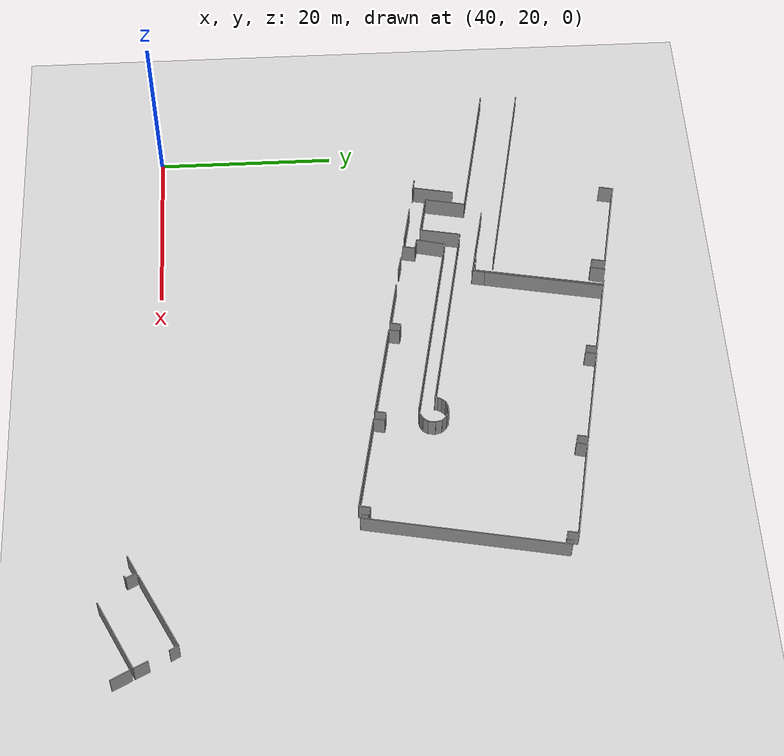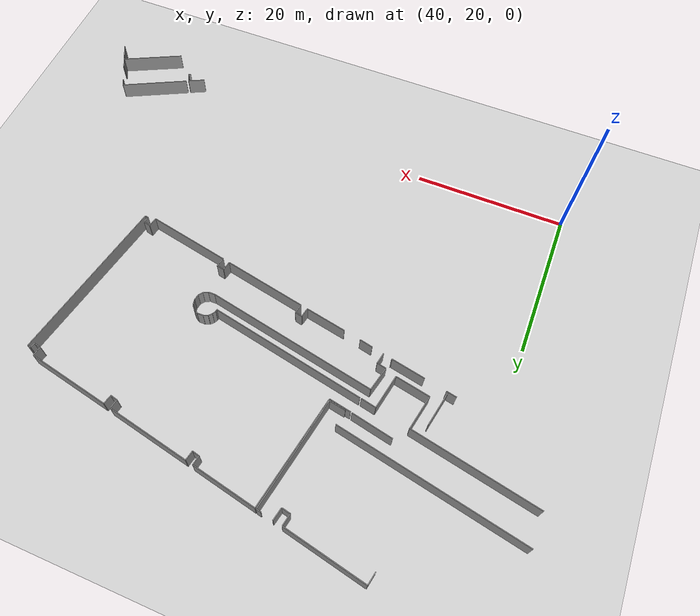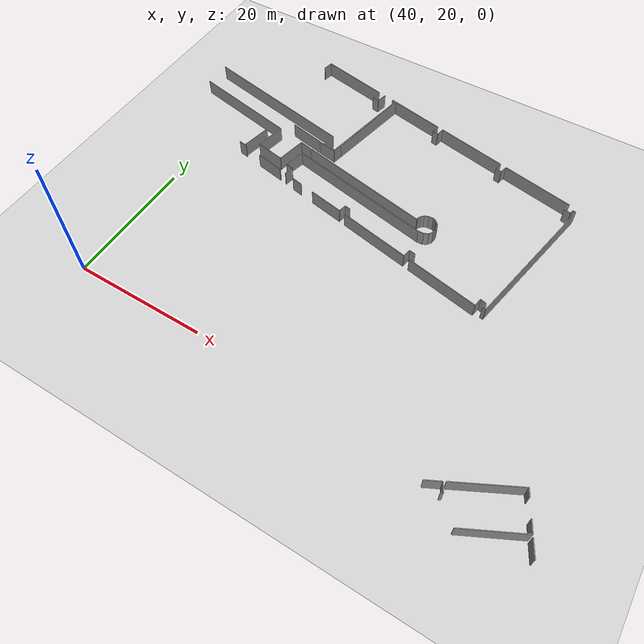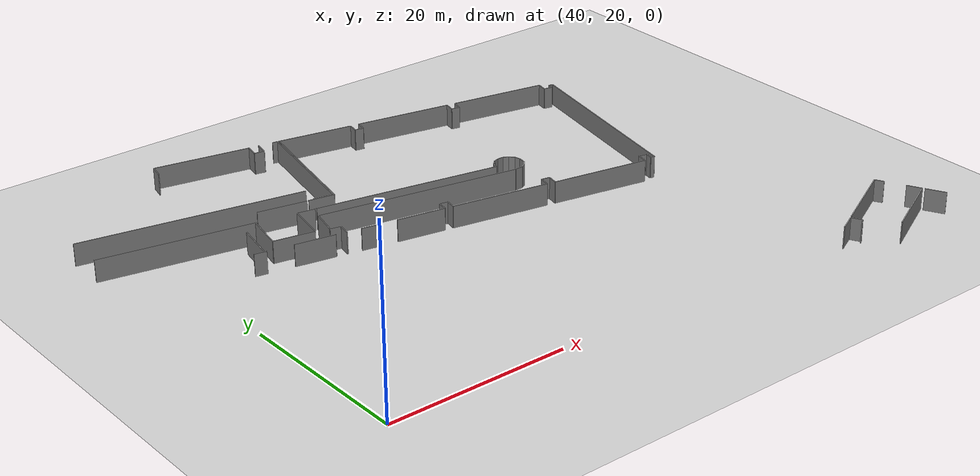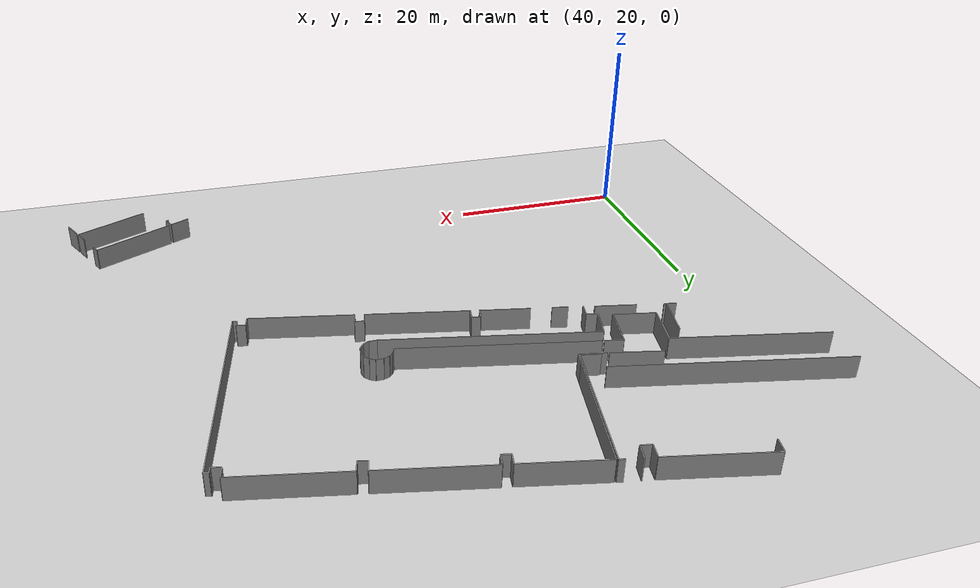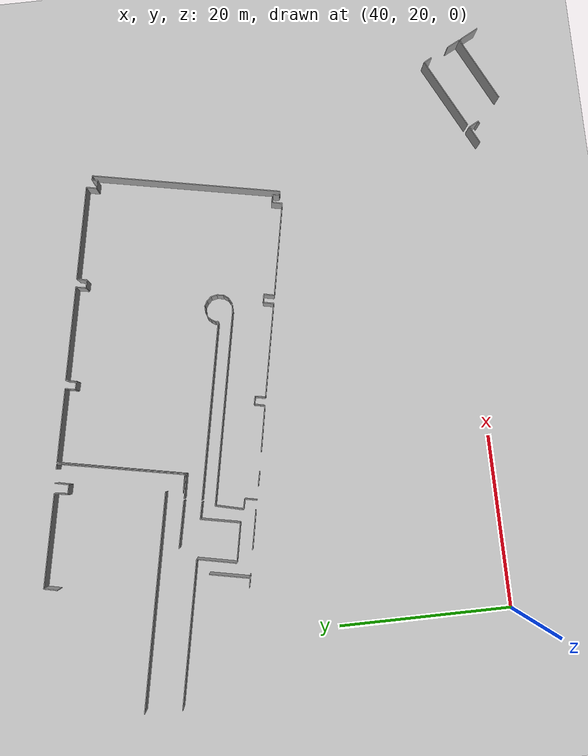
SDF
<sdf version="1.6">
 <world name="default">
  <model name="ground_plane">
   <static>1</static>
   <link name="link">
    <collision name="collision">
     <geometry><plane><normal>0 0 1</normal><size>100 100</size></plane></geometry>
     <surface><friction><ode><mu>100</mu><mu2>50</mu2></ode></friction></surface>
    </collision>
    <visual name="visual">
     <cast_shadows>0</cast_shadows>
     <geometry><plane><normal>0 0 1</normal><size>100 100</size></plane></geometry>
     <material>
      <script><uri>file://media/materials/scripts/gazebo.material</uri><name>Gazebo/Grey</name></script>
     </material>
    </visual>
   </link>
  </model>
  <model name="0510045922_A-40">
   <static>1</static>
   <link name="Wall_172">
    <collision name="Wall_172_Collision">
     <geometry><box><size>5.50005619772 0.1 2.5</size></box></geometry>
     <pose>2.75002809886 0 1.25 0 0 0</pose>
    </collision>
    <visual name="Wall_172_Visual">
     <pose>2.75002809886 0 1.25 0 0 0</pose>
     <geometry><box><size>5.50005619772 0.1 2.5</size></box></geometry>
     <material>
      <script><uri>file://media/materials/scripts/gazebo.material</uri><name>Gazebo/Grey</name></script>
      <ambient>1 1 1 1</ambient>
     </material>
    </visual>
    <pose>185.160881998 -43.8412403889 0 0 0 -0.200758034149</pose>
   </link>
   <link name="Wall_173">
    <collision name="Wall_173_Collision">
     <geometry><box><size>1.96969243974 0.1 2.5</size></box></geometry>
     <pose>0.984846219869 0 1.25 0 0 0</pose>
    </collision>
    <visual name="Wall_173_Visual">
     <pose>0.984846219869 0 1.25 0 0 0</pose>
     <geometry><box><size>1.96969243974 0.1 2.5</size></box></geometry>
     <material>
      <script><uri>file://media/materials/scripts/gazebo.material</uri><name>Gazebo/Grey</name></script>
      <ambient>1 1 1 1</ambient>
     </material>
    </visual>
    <pose>190.147347017 -46.9861854229 0 0 0 2.93850282684</pose>
   </link>
   <link name="Wall_174">
    <collision name="Wall_174_Collision">
     <geometry><box><size>4.60955972605 0.1 2.5</size></box></geometry>
     <pose>2.30477986302 0 1.25 0 0 0</pose>
    </collision>
    <visual name="Wall_174_Visual">
     <pose>2.30477986302 0 1.25 0 0 0</pose>
     <geometry><box><size>4.60955972605 0.1 2.5</size></box></geometry>
     <material>
      <script><uri>file://media/materials/scripts/gazebo.material</uri><name>Gazebo/Grey</name></script>
      <ambient>1 1 1 1</ambient>
     </material>
    </visual>
    <pose>188.218135604 -46.588905128 0 0 0 -1.76478542644</pose>
   </link>
   <link name="Wall_175">
    <collision name="Wall_175_Collision">
     <geometry><box><size>4.56490491552 0.1 2.5</size></box></geometry>
     <pose>2.28245245776 0 1.25 0 0 0</pose>
    </collision>
    <visual name="Wall_175_Visual">
     <pose>2.28245245776 0 1.25 0 0 0</pose>
     <geometry><box><size>4.56490491552 0.1 2.5</size></box></geometry>
     <material>
      <script><uri>file://media/materials/scripts/gazebo.material</uri><name>Gazebo/Grey</name></script>
      <ambient>1 1 1 1</ambient>
     </material>
    </visual>
    <pose>187.329529135 -51.1120035585 0 0 0 2.95033412985</pose>
   </link>
   <link name="Wall_176">
    <collision name="Wall_176_Collision">
     <geometry><box><size>4.61694798733 0.1 2.5</size></box></geometry>
     <pose>2.30847399366 0 1.25 0 0 0</pose>
    </collision>
    <visual name="Wall_176_Visual">
     <pose>2.30847399366 0 1.25 0 0 0</pose>
     <geometry><box><size>4.61694798733 0.1 2.5</size></box></geometry>
     <material>
      <script><uri>file://media/materials/scripts/gazebo.material</uri><name>Gazebo/Grey</name></script>
      <ambient>1 1 1 1</ambient>
     </material>
    </visual>
    <pose>182.847861727 -50.2442396899 0 0 0 1.36937353729</pose>
   </link>
   <link name="Wall_177">
    <collision name="Wall_177_Collision">
     <geometry><box><size>16.7917271256 0.1 2.5</size></box></geometry>
     <pose>8.39586356278 0 1.25 0 0 0</pose>
    </collision>
    <visual name="Wall_177_Visual">
     <pose>8.39586356278 0 1.25 0 0 0</pose>
     <geometry><box><size>16.7917271256 0.1 2.5</size></box></geometry>
     <material>
      <script><uri>file://media/materials/scripts/gazebo.material</uri><name>Gazebo/Grey</name></script>
      <ambient>1 1 1 1</ambient>
     </material>
    </visual>
    <pose>183.771544767 -45.7206329033 0 0 0 2.94825522146</pose>
   </link>
   <link name="Wall_180">
    <collision name="Wall_180_Collision">
     <geometry><box><size>4.56636554762 0.1 2.5</size></box></geometry>
     <pose>2.28318277381 0 1.25 0 0 0</pose>
    </collision>
    <visual name="Wall_180_Visual">
     <pose>2.28318277381 0 1.25 0 0 0</pose>
     <geometry><box><size>4.56636554762 0.1 2.5</size></box></geometry>
     <material>
      <script><uri>file://media/materials/scripts/gazebo.material</uri><name>Gazebo/Grey</name></script>
      <ambient>1 1 1 1</ambient>
     </material>
    </visual>
    <pose>181.934599987 -46.9594967275 0 0 0 -1.76743865279</pose>
   </link>
   <link name="Wall_182">
    <collision name="Wall_182_Collision">
     <geometry><box><size>0.0889376230941 0.1 2.5</size></box></geometry>
     <pose>0.0444688115471 0 1.25 0 0 0</pose>
    </collision>
    <visual name="Wall_182_Visual">
     <pose>0.0444688115471 0 1.25 0 0 0</pose>
     <geometry><box><size>0.0889376230941 0.1 2.5</size></box></geometry>
     <material>
      <script><uri>file://media/materials/scripts/gazebo.material</uri><name>Gazebo/Grey</name></script>
      <ambient>1 1 1 1</ambient>
     </material>
    </visual>
    <pose>188.512473788 -52.9309016966 0 0 0 -1.75473978333</pose>
   </link>
   <link name="Wall_183">
    <collision name="Wall_183_Collision">
     <geometry><box><size>4.46003950951 0.1 2.5</size></box></geometry>
     <pose>2.23001975476 0 1.25 0 0 0</pose>
    </collision>
    <visual name="Wall_183_Visual">
     <pose>2.23001975476 0 1.25 0 0 0</pose>
     <geometry><box><size>4.46003950951 0.1 2.5</size></box></geometry>
     <material>
      <script><uri>file://media/materials/scripts/gazebo.material</uri><name>Gazebo/Grey</name></script>
      <ambient>1 1 1 1</ambient>
     </material>
    </visual>
    <pose>188.496206393 -53.0183389464 0 0 0 2.9509478574</pose>
   </link>
   <link name="Wall_184">
    <collision name="Wall_184_Collision">
     <geometry><box><size>1.35056414123 0.1 2.5</size></box></geometry>
     <pose>0.675282070615 0 1.25 0 0 0</pose>
    </collision>
    <visual name="Wall_184_Visual">
     <pose>0.675282070615 0 1.25 0 0 0</pose>
     <geometry><box><size>1.35056414123 0.1 2.5</size></box></geometry>
     <material>
      <script><uri>file://media/materials/scripts/gazebo.material</uri><name>Gazebo/Grey</name></script>
      <ambient>1 1 1 1</ambient>
     </material>
    </visual>
    <pose>181.252131918 -51.6264599352 0 0 0 2.94977043137</pose>
   </link>
   <link name="Wall_221">
    <collision name="Wall_221_Collision">
     <geometry><box><size>1.6026341992 0.1 2.5</size></box></geometry>
     <pose>0.801317099599 0 1.25 0 0 0</pose>
    </collision>
    <visual name="Wall_221_Visual">
     <pose>0.801317099599 0 1.25 0 0 0</pose>
     <geometry><box><size>1.6026341992 0.1 2.5</size></box></geometry>
     <material>
      <script><uri>file://media/materials/scripts/gazebo.material</uri><name>Gazebo/Grey</name></script>
      <ambient>1 1 1 1</ambient>
     </material>
    </visual>
    <pose>182.018732922 -29.6743724979 0 0 0 1.36182980148</pose>
   </link>
   <link name="Wall_222">
    <collision name="Wall_222_Collision">
     <geometry><box><size>10.8010604992 0.1 2.5</size></box></geometry>
     <pose>5.4005302496 0 1.25 0 0 0</pose>
    </collision>
    <visual name="Wall_222_Visual">
     <pose>5.4005302496 0 1.25 0 0 0</pose>
     <geometry><box><size>10.8010604992 0.1 2.5</size></box></geometry>
     <material>
      <script><uri>file://media/materials/scripts/gazebo.material</uri><name>Gazebo/Grey</name></script>
      <ambient>1 1 1 1</ambient>
     </material>
    </visual>
    <pose>182.351197814 -28.1066022749 0 0 0 -0.196417149802</pose>
   </link>
   <link name="Wall_223">
    <collision name="Wall_223_Collision">
     <geometry><box><size>1.55365479058 0.1 2.5</size></box></geometry>
     <pose>0.776827395288 0 1.25 0 0 0</pose>
    </collision>
    <visual name="Wall_223_Visual">
     <pose>0.776827395288 0 1.25 0 0 0</pose>
     <geometry><box><size>1.55365479058 0.1 2.5</size></box></geometry>
     <material>
      <script><uri>file://media/materials/scripts/gazebo.material</uri><name>Gazebo/Grey</name></script>
      <ambient>1 1 1 1</ambient>
     </material>
    </visual>
    <pose>192.944576476 -30.2145008579 0 0 0 -1.76206368666</pose>
   </link>
   <link name="Wall_224">
    <collision name="Wall_224_Collision">
     <geometry><box><size>1.13733317667 0.1 2.5</size></box></geometry>
     <pose>0.568666588334 0 1.25 0 0 0</pose>
    </collision>
    <visual name="Wall_224_Visual">
     <pose>0.568666588334 0 1.25 0 0 0</pose>
     <geometry><box><size>1.13733317667 0.1 2.5</size></box></geometry>
     <material>
      <script><uri>file://media/materials/scripts/gazebo.material</uri><name>Gazebo/Grey</name></script>
      <ambient>1 1 1 1</ambient>
     </material>
    </visual>
    <pose>192.64922158 -31.7398233463 0 0 0 -0.205942360282</pose>
   </link>
   <link name="Wall_225">
    <collision name="Wall_225_Collision">
     <geometry><box><size>1.65115488625 0.1 2.5</size></box></geometry>
     <pose>0.825577443123 0 1.25 0 0 0</pose>
    </collision>
    <visual name="Wall_225_Visual">
     <pose>0.825577443123 0 1.25 0 0 0</pose>
     <geometry><box><size>1.65115488625 0.1 2.5</size></box></geometry>
     <material>
      <script><uri>file://media/materials/scripts/gazebo.material</uri><name>Gazebo/Grey</name></script>
      <ambient>1 1 1 1</ambient>
     </material>
    </visual>
    <pose>193.762521446 -31.9723962636 0 0 0 1.35688606933</pose>
   </link>
   <link name="Wall_226">
    <collision name="Wall_226_Collision">
     <geometry><box><size>0.607433908189 0.1 2.5</size></box></geometry>
     <pose>0.303716954094 0 1.25 0 0 0</pose>
    </collision>
    <visual name="Wall_226_Visual">
     <pose>0.303716954094 0 1.25 0 0 0</pose>
     <geometry><box><size>0.607433908189 0.1 2.5</size></box></geometry>
     <material>
      <script><uri>file://media/materials/scripts/gazebo.material</uri><name>Gazebo/Grey</name></script>
      <ambient>1 1 1 1</ambient>
     </material>
    </visual>
    <pose>195.665044163 -30.6793925145 0 0 0 -0.187301524355</pose>
   </link>
   <link name="Wall_227">
    <collision name="Wall_227_Collision">
     <geometry><box><size>14.7902595882 0.1 2.5</size></box></geometry>
     <pose>7.3951297941 0 1.25 0 0 0</pose>
    </collision>
    <visual name="Wall_227_Visual">
     <pose>7.3951297941 0 1.25 0 0 0</pose>
     <geometry><box><size>14.7902595882 0.1 2.5</size></box></geometry>
     <material>
      <script><uri>file://media/materials/scripts/gazebo.material</uri><name>Gazebo/Grey</name></script>
      <ambient>1 1 1 1</ambient>
     </material>
    </visual>
    <pose>196.261854229 -30.7925017475 0 0 0 -1.76010631823</pose>
   </link>
   <link name="Wall_228">
    <collision name="Wall_228_Collision">
     <geometry><box><size>2.15059550881 0.1 2.5</size></box></geometry>
     <pose>1.07529775441 0 1.25 0 0 0</pose>
    </collision>
    <visual name="Wall_228_Visual">
     <pose>1.07529775441 0 1.25 0 0 0</pose>
     <geometry><box><size>2.15059550881 0.1 2.5</size></box></geometry>
     <material>
      <script><uri>file://media/materials/scripts/gazebo.material</uri><name>Gazebo/Grey</name></script>
      <ambient>1 1 1 1</ambient>
     </material>
    </visual>
    <pose>193.478604562 -45.3185232255 0 0 0 2.96540736856</pose>
   </link>
   <link name="Wall_229">
    <collision name="Wall_229_Collision">
     <geometry><box><size>24.8579913138 0.1 2.5</size></box></geometry>
     <pose>12.4289956569 0 1.25 0 0 0</pose>
    </collision>
    <visual name="Wall_229_Visual">
     <pose>12.4289956569 0 1.25 0 0 0</pose>
     <geometry><box><size>24.8579913138 0.1 2.5</size></box></geometry>
     <material>
      <script><uri>file://media/materials/scripts/gazebo.material</uri><name>Gazebo/Grey</name></script>
      <ambient>1 1 1 1</ambient>
     </material>
    </visual>
    <pose>191.75426066 -42.9429751541 0 0 0 2.94935281395</pose>
   </link>
   <link name="Wall_230">
    <collision name="Wall_230_Collision">
     <geometry><box><size>13.5348003595 0.1 2.5</size></box></geometry>
     <pose>6.76740017977 0 1.25 0 0 0</pose>
    </collision>
    <visual name="Wall_230_Visual">
     <pose>6.76740017977 0 1.25 0 0 0</pose>
     <geometry><box><size>13.5348003595 0.1 2.5</size></box></geometry>
     <material>
      <script><uri>file://media/materials/scripts/gazebo.material</uri><name>Gazebo/Grey</name></script>
      <ambient>1 1 1 1</ambient>
     </material>
    </visual>
    <pose>193.842079176 -44.1088898774 0 0 0 1.37822549122</pose>
   </link>
   <link name="Wall_231">
    <collision name="Wall_231_Collision">
     <geometry><box><size>8.57009551268 0.1 2.5</size></box></geometry>
     <pose>4.28504775634 0 1.25 0 0 0</pose>
    </collision>
    <visual name="Wall_231_Visual">
     <pose>4.28504775634 0 1.25 0 0 0</pose>
     <geometry><box><size>8.57009551268 0.1 2.5</size></box></geometry>
     <material>
      <script><uri>file://media/materials/scripts/gazebo.material</uri><name>Gazebo/Grey</name></script>
      <ambient>1 1 1 1</ambient>
     </material>
    </visual>
    <pose>196.432407702 -30.8242740039 0 0 0 -0.196203166145</pose>
   </link>
   <link name="Wall_232">
    <collision name="Wall_232_Collision">
     <geometry><box><size>1.18983743332 0.1 2.5</size></box></geometry>
     <pose>0.594918716659 0 1.25 0 0 0</pose>
    </collision>
    <visual name="Wall_232_Visual">
     <pose>0.594918716659 0 1.25 0 0 0</pose>
     <geometry><box><size>1.18983743332 0.1 2.5</size></box></geometry>
     <material>
      <script><uri>file://media/materials/scripts/gazebo.material</uri><name>Gazebo/Grey</name></script>
      <ambient>1 1 1 1</ambient>
     </material>
    </visual>
    <pose>204.838075872 -32.4949863379 0 0 0 -1.76513353596</pose>
   </link>
   <link name="Wall_233">
    <collision name="Wall_233_Collision">
     <geometry><box><size>0.962731473985 0.1 2.5</size></box></geometry>
     <pose>0.481365736992 0 1.25 0 0 0</pose>
    </collision>
    <visual name="Wall_233_Visual">
     <pose>0.481365736992 0 1.25 0 0 0</pose>
     <geometry><box><size>0.962731473985 0.1 2.5</size></box></geometry>
     <material>
      <script><uri>file://media/materials/scripts/gazebo.material</uri><name>Gazebo/Grey</name></script>
      <ambient>1 1 1 1</ambient>
     </material>
    </visual>
    <pose>204.608298913 -33.6624261295 0 0 0 -0.229866140989</pose>
   </link>
   <link name="Wall_234">
    <collision name="Wall_234_Collision">
     <geometry><box><size>1.25840265121 0.1 2.5</size></box></geometry>
     <pose>0.629201325603 0 1.25 0 0 0</pose>
    </collision>
    <visual name="Wall_234_Visual">
     <pose>0.629201325603 0 1.25 0 0 0</pose>
     <geometry><box><size>1.25840265121 0.1 2.5</size></box></geometry>
     <material>
      <script><uri>file://media/materials/scripts/gazebo.material</uri><name>Gazebo/Grey</name></script>
      <ambient>1 1 1 1</ambient>
     </material>
    </visual>
    <pose>205.545707568 -33.8817817881 0 0 0 1.36658737214</pose>
   </link>
   <link name="Wall_235">
    <collision name="Wall_235_Collision">
     <geometry><box><size>11.0159925936 0.1 2.5</size></box></geometry>
     <pose>5.50799629678 0 1.25 0 0 0</pose>
    </collision>
    <visual name="Wall_235_Visual">
     <pose>5.50799629678 0 1.25 0 0 0</pose>
     <geometry><box><size>11.0159925936 0.1 2.5</size></box></geometry>
     <material>
      <script><uri>file://media/materials/scripts/gazebo.material</uri><name>Gazebo/Grey</name></script>
      <ambient>1 1 1 1</ambient>
     </material>
    </visual>
    <pose>205.800902332 -32.6495265934 0 0 0 -0.194675974177</pose>
   </link>
   <link name="Wall_236">
    <collision name="Wall_236_Collision">
     <geometry><box><size>1.18381069292 0.1 2.5</size></box></geometry>
     <pose>0.591905346459 0 1.25 0 0 0</pose>
    </collision>
    <visual name="Wall_236_Visual">
     <pose>0.591905346459 0 1.25 0 0 0</pose>
     <geometry><box><size>1.18381069292 0.1 2.5</size></box></geometry>
     <material>
      <script><uri>file://media/materials/scripts/gazebo.material</uri><name>Gazebo/Grey</name></script>
      <ambient>1 1 1 1</ambient>
     </material>
    </visual>
    <pose>216.608807269 -34.780555379 0 0 0 -1.75454833001</pose>
   </link>
   <link name="Wall_237">
    <collision name="Wall_237_Collision">
     <geometry><box><size>0.936950360606 0.1 2.5</size></box></geometry>
     <pose>0.468475180303 0 1.25 0 0 0</pose>
    </collision>
    <visual name="Wall_237_Visual">
     <pose>0.468475180303 0 1.25 0 0 0</pose>
     <geometry><box><size>0.936950360606 0.1 2.5</size></box></geometry>
     <material>
      <script><uri>file://media/materials/scripts/gazebo.material</uri><name>Gazebo/Grey</name></script>
      <ambient>1 1 1 1</ambient>
     </material>
    </visual>
    <pose>216.392501747 -35.9444366779 0 0 0 -0.226554846432</pose>
   </link>
   <link name="Wall_238">
    <collision name="Wall_238_Collision">
     <geometry><box><size>1.21737269032 0.1 2.5</size></box></geometry>
     <pose>0.608686345158 0 1.25 0 0 0</pose>
    </collision>
    <visual name="Wall_238_Visual">
     <pose>0.608686345158 0 1.25 0 0 0</pose>
     <geometry><box><size>1.21737269032 0.1 2.5</size></box></geometry>
     <material>
      <script><uri>file://media/materials/scripts/gazebo.material</uri><name>Gazebo/Grey</name></script>
      <ambient>1 1 1 1</ambient>
     </material>
    </visual>
    <pose>217.305509309 -36.1548961047 0 0 0 1.34141528445</pose>
   </link>
   <link name="Wall_239">
    <collision name="Wall_239_Collision">
     <geometry><box><size>11.0303186779 0.1 2.5</size></box></geometry>
     <pose>5.51515933896 0 1.25 0 0 0</pose>
    </collision>
    <visual name="Wall_239_Visual">
     <pose>5.51515933896 0 1.25 0 0 0</pose>
     <geometry><box><size>11.0303186779 0.1 2.5</size></box></geometry>
     <material>
      <script><uri>file://media/materials/scripts/gazebo.material</uri><name>Gazebo/Grey</name></script>
      <ambient>1 1 1 1</ambient>
     </material>
    </visual>
    <pose>217.582309208 -34.9694096715 0 0 0 -0.191226787856</pose>
   </link>
   <link name="Wall_240">
    <collision name="Wall_240_Collision">
     <geometry><box><size>1.20708685766 0.1 2.5</size></box></geometry>
     <pose>0.60354342883 0 1.25 0 0 0</pose>
    </collision>
    <visual name="Wall_240_Visual">
     <pose>0.60354342883 0 1.25 0 0 0</pose>
     <geometry><box><size>1.20708685766 0.1 2.5</size></box></geometry>
     <material>
      <script><uri>file://media/materials/scripts/gazebo.material</uri><name>Gazebo/Grey</name></script>
      <ambient>1 1 1 1</ambient>
     </material>
    </visual>
    <pose>228.411565101 -37.0658702421 0 0 0 -1.76468168012</pose>
   </link>
   <link name="Wall_241">
    <collision name="Wall_241_Collision">
     <geometry><box><size>0.956369467328 0.1 2.5</size></box></geometry>
     <pose>0.478184733664 0 1.25 0 0 0</pose>
    </collision>
    <visual name="Wall_241_Visual">
     <pose>0.478184733664 0 1.25 0 0 0</pose>
     <geometry><box><size>0.956369467328 0.1 2.5</size></box></geometry>
     <material>
      <script><uri>file://media/materials/scripts/gazebo.material</uri><name>Gazebo/Grey</name></script>
      <ambient>1 1 1 1</ambient>
     </material>
    </visual>
    <pose>228.178992184 -38.2503399631 0 0 0 -0.213710642364</pose>
   </link>
   <link name="Wall_242">
    <collision name="Wall_242_Collision">
     <geometry><box><size>0.666023520597 0.1 2.5</size></box></geometry>
     <pose>0.333011760299 0 1.25 0 0 0</pose>
    </collision>
    <visual name="Wall_242_Visual">
     <pose>0.333011760299 0 1.25 0 0 0</pose>
     <geometry><box><size>0.666023520597 0.1 2.5</size></box></geometry>
     <material>
      <script><uri>file://media/materials/scripts/gazebo.material</uri><name>Gazebo/Grey</name></script>
      <ambient>1 1 1 1</ambient>
     </material>
    </visual>
    <pose>229.11360488 -38.4531740484 0 0 0 1.35229295754</pose>
   </link>
   <link name="Wall_243">
    <collision name="Wall_243_Collision">
     <geometry><box><size>0.483748914173 0.1 2.5</size></box></geometry>
     <pose>0.241874457087 0 1.25 0 0 0</pose>
    </collision>
    <visual name="Wall_243_Visual">
     <pose>0.241874457087 0 1.25 0 0 0</pose>
     <geometry><box><size>0.483748914173 0.1 2.5</size></box></geometry>
     <material>
      <script><uri>file://media/materials/scripts/gazebo.material</uri><name>Gazebo/Grey</name></script>
      <ambient>1 1 1 1</ambient>
     </material>
    </visual>
    <pose>229.257978014 -37.8029865921 0 0 0 -0.24141043563</pose>
   </link>
   <link name="Wall_244">
    <collision name="Wall_244_Collision">
     <geometry><box><size>22.3292368934 0.1 2.5</size></box></geometry>
     <pose>11.1646184467 0 1.25 0 0 0</pose>
    </collision>
    <visual name="Wall_244_Visual">
     <pose>11.1646184467 0 1.25 0 0 0</pose>
     <geometry><box><size>22.3292368934 0.1 2.5</size></box></geometry>
     <material>
      <script><uri>file://media/materials/scripts/gazebo.material</uri><name>Gazebo/Grey</name></script>
      <ambient>1 1 1 1</ambient>
     </material>
    </visual>
    <pose>229.727699053 -37.9186376056 0 0 0 -1.7631264855</pose>
   </link>
   <link name="Wall_245">
    <collision name="Wall_245_Collision">
     <geometry><box><size>0.455615416198 0.1 2.5</size></box></geometry>
     <pose>0.227807708099 0 1.25 0 0 0</pose>
    </collision>
    <visual name="Wall_245_Visual">
     <pose>0.227807708099 0 1.25 0 0 0</pose>
     <geometry><box><size>0.455615416198 0.1 2.5</size></box></geometry>
     <material>
      <script><uri>file://media/materials/scripts/gazebo.material</uri><name>Gazebo/Grey</name></script>
      <ambient>1 1 1 1</ambient>
     </material>
    </visual>
    <pose>225.459541209 -59.8361568279 0 0 0 2.94222773086</pose>
   </link>
   <link name="Wall_246">
    <collision name="Wall_246_Collision">
     <geometry><box><size>0.813381243167 0.1 2.5</size></box></geometry>
     <pose>0.406690621584 0 1.25 0 0 0</pose>
    </collision>
    <visual name="Wall_246_Visual">
     <pose>0.406690621584 0 1.25 0 0 0</pose>
     <geometry><box><size>0.813381243167 0.1 2.5</size></box></geometry>
     <material>
      <script><uri>file://media/materials/scripts/gazebo.material</uri><name>Gazebo/Grey</name></script>
      <ambient>1 1 1 1</ambient>
     </material>
    </visual>
    <pose>225.012950372 -59.7459236195 0 0 0 1.37677147184</pose>
   </link>
   <link name="Wall_247">
    <collision name="Wall_247_Collision">
     <geometry><box><size>0.958563971082 0.1 2.5</size></box></geometry>
     <pose>0.479281985541 0 1.25 0 0 0</pose>
    </collision>
    <visual name="Wall_247_Visual">
     <pose>0.479281985541 0 1.25 0 0 0</pose>
     <geometry><box><size>0.958563971082 0.1 2.5</size></box></geometry>
     <material>
      <script><uri>file://media/materials/scripts/gazebo.material</uri><name>Gazebo/Grey</name></script>
      <ambient>1 1 1 1</ambient>
     </material>
    </visual>
    <pose>225.16977823 -58.9478045371 0 0 0 2.90143741437</pose>
   </link>
   <link name="Wall_248">
    <collision name="Wall_248_Collision">
     <geometry><box><size>1.25126268295 0.1 2.5</size></box></geometry>
     <pose>0.625631341477 0 1.25 0 0 0</pose>
    </collision>
    <visual name="Wall_248_Visual">
     <pose>0.625631341477 0 1.25 0 0 0</pose>
     <geometry><box><size>1.25126268295 0.1 2.5</size></box></geometry>
     <material>
      <script><uri>file://media/materials/scripts/gazebo.material</uri><name>Gazebo/Grey</name></script>
      <ambient>1 1 1 1</ambient>
     </material>
    </visual>
    <pose>224.238724026 -58.7198068247 0 0 0 -1.77349043074</pose>
   </link>
   <link name="Wall_249">
    <collision name="Wall_249_Collision">
     <geometry><box><size>11.0588763802 0.1 2.5</size></box></geometry>
     <pose>5.52943819011 0 1.25 0 0 0</pose>
    </collision>
    <visual name="Wall_249_Visual">
     <pose>5.52943819011 0 1.25 0 0 0</pose>
     <geometry><box><size>11.0588763802 0.1 2.5</size></box></geometry>
     <material>
      <script><uri>file://media/materials/scripts/gazebo.material</uri><name>Gazebo/Grey</name></script>
      <ambient>1 1 1 1</ambient>
     </material>
    </visual>
    <pose>223.986833577 -59.9454533901 0 0 0 2.94948447229</pose>
   </link>
   <link name="Wall_250">
    <collision name="Wall_250_Collision">
     <geometry><box><size>1.23350188733 0.1 2.5</size></box></geometry>
     <pose>0.616750943664 0 1.25 0 0 0</pose>
    </collision>
    <visual name="Wall_250_Visual">
     <pose>0.616750943664 0 1.25 0 0 0</pose>
     <geometry><box><size>1.23350188733 0.1 2.5</size></box></geometry>
     <material>
      <script><uri>file://media/materials/scripts/gazebo.material</uri><name>Gazebo/Grey</name></script>
      <ambient>1 1 1 1</ambient>
     </material>
    </visual>
    <pose>213.131397344 -57.8339963144 0 0 0 1.36050894593</pose>
   </link>
   <link name="Wall_251">
    <collision name="Wall_251_Collision">
     <geometry><box><size>0.979329330944 0.1 2.5</size></box></geometry>
     <pose>0.489664665472 0 1.25 0 0 0</pose>
    </collision>
    <visual name="Wall_251_Visual">
     <pose>0.489664665472 0 1.25 0 0 0</pose>
     <geometry><box><size>0.979329330944 0.1 2.5</size></box></geometry>
     <material>
      <script><uri>file://media/materials/scripts/gazebo.material</uri><name>Gazebo/Grey</name></script>
      <ambient>1 1 1 1</ambient>
     </material>
    </visual>
    <pose>213.38887971 -56.6276672809 0 0 0 2.9480655464</pose>
   </link>
   <link name="Wall_252">
    <collision name="Wall_252_Collision">
     <geometry><box><size>1.2247357034 0.1 2.5</size></box></geometry>
     <pose>0.612367851702 0 1.25 0 0 0</pose>
    </collision>
    <visual name="Wall_252_Visual">
     <pose>0.612367851702 0 1.25 0 0 0</pose>
     <geometry><box><size>1.2247357034 0.1 2.5</size></box></geometry>
     <material>
      <script><uri>file://media/materials/scripts/gazebo.material</uri><name>Gazebo/Grey</name></script>
      <ambient>1 1 1 1</ambient>
     </material>
    </visual>
    <pose>212.427832497 -56.4393213446 0 0 0 -1.77222133287</pose>
   </link>
   <link name="Wall_253">
    <collision name="Wall_253_Collision">
     <geometry><box><size>11.0280370966 0.1 2.5</size></box></geometry>
     <pose>5.5140185483 0 1.25 0 0 0</pose>
    </collision>
    <visual name="Wall_253_Visual">
     <pose>5.5140185483 0 1.25 0 0 0</pose>
     <geometry><box><size>11.0280370966 0.1 2.5</size></box></geometry>
     <material>
      <script><uri>file://media/materials/scripts/gazebo.material</uri><name>Gazebo/Grey</name></script>
      <ambient>1 1 1 1</ambient>
     </material>
    </visual>
    <pose>212.182804855 -57.6392959268 0 0 0 2.94889355018</pose>
   </link>
   <link name="Wall_254">
    <collision name="Wall_254_Collision">
     <geometry><box><size>1.21894555719 0.1 2.5</size></box></geometry>
     <pose>0.609472778595 0 1.25 0 0 0</pose>
    </collision>
    <visual name="Wall_254_Visual">
     <pose>0.609472778595 0 1.25 0 0 0</pose>
     <geometry><box><size>1.21894555719 0.1 2.5</size></box></geometry>
     <material>
      <script><uri>file://media/materials/scripts/gazebo.material</uri><name>Gazebo/Grey</name></script>
      <ambient>1 1 1 1</ambient>
     </material>
    </visual>
    <pose>201.3588867 -55.527330495 0 0 0 1.38264310152</pose>
   </link>
   <link name="Wall_255">
    <collision name="Wall_255_Collision">
     <geometry><box><size>0.921358975379 0.1 2.5</size></box></geometry>
     <pose>0.46067948769 0 1.25 0 0 0</pose>
    </collision>
    <visual name="Wall_255_Visual">
     <pose>0.46067948769 0 1.25 0 0 0</pose>
     <geometry><box><size>0.921358975379 0.1 2.5</size></box></geometry>
     <material>
      <script><uri>file://media/materials/scripts/gazebo.material</uri><name>Gazebo/Grey</name></script>
      <ambient>1 1 1 1</ambient>
     </material>
    </visual>
    <pose>201.586884413 -54.3298976933 0 0 0 2.93938189533</pose>
   </link>
   <link name="Wall_256">
    <collision name="Wall_256_Collision">
     <geometry><box><size>1.22983224909 0.1 2.5</size></box></geometry>
     <pose>0.614916124545 0 1.25 0 0 0</pose>
    </collision>
    <visual name="Wall_256_Visual">
     <pose>0.614916124545 0 1.25 0 0 0</pose>
     <geometry><box><size>1.22983224909 0.1 2.5</size></box></geometry>
     <material>
      <script><uri>file://media/materials/scripts/gazebo.material</uri><name>Gazebo/Grey</name></script>
      <ambient>1 1 1 1</ambient>
     </material>
    </visual>
    <pose>200.684298151 -54.1448560717 0 0 0 -1.78489213382</pose>
   </link>
   <link name="Wall_257">
    <collision name="Wall_257_Collision">
     <geometry><box><size>5.38180870118 0.1 2.5</size></box></geometry>
     <pose>2.69090435059 0 1.25 0 0 0</pose>
    </collision>
    <visual name="Wall_257_Visual">
     <pose>2.69090435059 0 1.25 0 0 0</pose>
     <geometry><box><size>5.38180870118 0.1 2.5</size></box></geometry>
     <material>
      <script><uri>file://media/materials/scripts/gazebo.material</uri><name>Gazebo/Grey</name></script>
      <ambient>1 1 1 1</ambient>
     </material>
    </visual>
    <pose>200.423003114 -55.3466099002 0 0 0 2.95427474586</pose>
   </link>
   <link name="Wall_258">
    <collision name="Wall_258_Collision">
     <geometry><box><size>1.72025365662 0.1 2.5</size></box></geometry>
     <pose>0.860126828309 0 1.25 0 0 0</pose>
    </collision>
    <visual name="Wall_258_Visual">
     <pose>0.860126828309 0 1.25 0 0 0</pose>
     <geometry><box><size>1.72025365662 0.1 2.5</size></box></geometry>
     <material>
      <script><uri>file://media/materials/scripts/gazebo.material</uri><name>Gazebo/Grey</name></script>
      <ambient>1 1 1 1</ambient>
     </material>
    </visual>
    <pose>192.916871068 -53.9404969181 0 0 0 2.93428667287</pose>
   </link>
   <link name="Wall_259">
    <collision name="Wall_259_Collision">
     <geometry><box><size>1.47407792813 0.1 2.5</size></box></geometry>
     <pose>0.737038964063 0 1.25 0 0 0</pose>
    </collision>
    <visual name="Wall_259_Visual">
     <pose>0.737038964063 0 1.25 0 0 0</pose>
     <geometry><box><size>1.47407792813 0.1 2.5</size></box></geometry>
     <material>
      <script><uri>file://media/materials/scripts/gazebo.material</uri><name>Gazebo/Grey</name></script>
      <ambient>1 1 1 1</ambient>
     </material>
    </visual>
    <pose>189.676355087 -53.3243693207 0 0 0 1.3771544269</pose>
   </link>
   <link name="Wall_260">
    <collision name="Wall_260_Collision">
     <geometry><box><size>1.2182558598 0.1 2.5</size></box></geometry>
     <pose>0.609127929901 0 1.25 0 0 0</pose>
    </collision>
    <visual name="Wall_260_Visual">
     <pose>0.609127929901 0 1.25 0 0 0</pose>
     <geometry><box><size>1.2182558598 0.1 2.5</size></box></geometry>
     <material>
      <script><uri>file://media/materials/scripts/gazebo.material</uri><name>Gazebo/Grey</name></script>
      <ambient>1 1 1 1</ambient>
     </material>
    </visual>
    <pose>189.960017792 -51.8778420283 0 0 0 2.92799291386</pose>
   </link>
   <link name="Wall_261">
    <collision name="Wall_261_Collision">
     <geometry><box><size>3.26650064805 0.1 2.5</size></box></geometry>
     <pose>1.63325032402 0 1.25 0 0 0</pose>
    </collision>
    <visual name="Wall_261_Visual">
     <pose>1.63325032402 0 1.25 0 0 0</pose>
     <geometry><box><size>3.26650064805 0.1 2.5</size></box></geometry>
     <material>
      <script><uri>file://media/materials/scripts/gazebo.material</uri><name>Gazebo/Grey</name></script>
      <ambient>1 1 1 1</ambient>
     </material>
    </visual>
    <pose>188.769447798 -51.6195971278 0 0 0 1.33446140423</pose>
   </link>
   <link name="Wall_262">
    <collision name="Wall_262_Collision">
     <geometry><box><size>22.7696818096 0.1 2.5</size></box></geometry>
     <pose>11.3848409048 0 1.25 0 0 0</pose>
    </collision>
    <visual name="Wall_262_Visual">
     <pose>11.3848409048 0 1.25 0 0 0</pose>
     <geometry><box><size>22.7696818096 0.1 2.5</size></box></geometry>
     <material>
      <script><uri>file://media/materials/scripts/gazebo.material</uri><name>Gazebo/Grey</name></script>
      <ambient>1 1 1 1</ambient>
     </material>
    </visual>
    <pose>189.534269556 -48.4438965495 0 0 0 -0.19208880452</pose>
   </link>
   <link name="Wall_263">
    <collision name="Wall_263_Collision">
     <geometry><box><size>0.87947357945 0.1 2.5</size></box></geometry>
     <pose>0.439736789725 0 1.25 0 0 0</pose>
    </collision>
    <visual name="Wall_263_Visual">
     <pose>0.439736789725 0 1.25 0 0 0</pose>
     <geometry><box><size>0.87947357945 0.1 2.5</size></box></geometry>
     <material>
      <script><uri>file://media/materials/scripts/gazebo.material</uri><name>Gazebo/Grey</name></script>
      <ambient>1 1 1 1</ambient>
     </material>
    </visual>
    <pose>211.885162356 -52.7908495901 0 0 0 0.0248575559964</pose>
   </link>
   <link name="Wall_264">
    <collision name="Wall_264_Collision">
     <geometry><box><size>0.698108706781 0.1 2.5</size></box></geometry>
     <pose>0.34905435339 0 1.25 0 0 0</pose>
    </collision>
    <visual name="Wall_264_Visual">
     <pose>0.34905435339 0 1.25 0 0 0</pose>
     <geometry><box><size>0.698108706781 0.1 2.5</size></box></geometry>
     <material>
      <script><uri>file://media/materials/scripts/gazebo.material</uri><name>Gazebo/Grey</name></script>
      <ambient>1 1 1 1</ambient>
     </material>
    </visual>
    <pose>212.764364237 -52.7689902777 0 0 0 0.491820638226</pose>
   </link>
   <link name="Wall_265">
    <collision name="Wall_265_Collision">
     <geometry><box><size>0.668217468404 0.1 2.5</size></box></geometry>
     <pose>0.334108734202 0 1.25 0 0 0</pose>
    </collision>
    <visual name="Wall_265_Visual">
     <pose>0.334108734202 0 1.25 0 0 0</pose>
     <geometry><box><size>0.668217468404 0.1 2.5</size></box></geometry>
     <material>
      <script><uri>file://media/materials/scripts/gazebo.material</uri><name>Gazebo/Grey</name></script>
      <ambient>1 1 1 1</ambient>
     </material>
    </visual>
    <pose>213.3797293 -52.4393213446 0 0 0 0.937413558011</pose>
   </link>
   <link name="Wall_266">
    <collision name="Wall_266_Collision">
     <geometry><box><size>0.789399322948 0.1 2.5</size></box></geometry>
     <pose>0.394699661474 0 1.25 0 0 0</pose>
    </collision>
    <visual name="Wall_266_Visual">
     <pose>0.394699661474 0 1.25 0 0 0</pose>
     <geometry><box><size>0.789399322948 0.1 2.5</size></box></geometry>
     <material>
      <script><uri>file://media/materials/scripts/gazebo.material</uri><name>Gazebo/Grey</name></script>
      <ambient>1 1 1 1</ambient>
     </material>
    </visual>
    <pose>213.775230349 -51.900718053 0 0 0 1.41692297884</pose>
   </link>
   <link name="Wall_267">
    <collision name="Wall_267_Collision">
     <geometry><box><size>0.709252461815 0.1 2.5</size></box></geometry>
     <pose>0.354626230907 0 1.25 0 0 0</pose>
    </collision>
    <visual name="Wall_267_Visual">
     <pose>0.354626230907 0 1.25 0 0 0</pose>
     <geometry><box><size>0.709252461815 0.1 2.5</size></box></geometry>
     <material>
      <script><uri>file://media/materials/scripts/gazebo.material</uri><name>Gazebo/Grey</name></script>
      <ambient>1 1 1 1</ambient>
     </material>
    </visual>
    <pose>213.896219101 -51.1206456123 0 0 0 1.78934865913</pose>
   </link>
   <link name="Wall_268">
    <collision name="Wall_268_Collision">
     <geometry><box><size>0.684583036837 0.1 2.5</size></box></geometry>
     <pose>0.342291518419 0 1.25 0 0 0</pose>
    </collision>
    <visual name="Wall_268_Visual">
     <pose>0.342291518419 0 1.25 0 0 0</pose>
     <geometry><box><size>0.684583036837 0.1 2.5</size></box></geometry>
     <material>
      <script><uri>file://media/materials/scripts/gazebo.material</uri><name>Gazebo/Grey</name></script>
      <ambient>1 1 1 1</ambient>
     </material>
    </visual>
    <pose>213.74244138 -50.4282645994 0 0 0 2.3107592894</pose>
   </link>
   <link name="Wall_269">
    <collision name="Wall_269_Collision">
     <geometry><box><size>0.63515290987 0.1 2.5</size></box></geometry>
     <pose>0.317576454935 0 1.25 0 0 0</pose>
    </collision>
    <visual name="Wall_269_Visual">
     <pose>0.317576454935 0 1.25 0 0 0</pose>
     <geometry><box><size>0.63515290987 0.1 2.5</size></box></geometry>
     <material>
      <script><uri>file://media/materials/scripts/gazebo.material</uri><name>Gazebo/Grey</name></script>
      <ambient>1 1 1 1</ambient>
     </material>
    </visual>
    <pose>213.280854038 -49.9227044545 0 0 0 2.61634118485</pose>
   </link>
   <link name="Wall_270">
    <collision name="Wall_270_Collision">
     <geometry><box><size>0.780378653187 0.1 2.5</size></box></geometry>
     <pose>0.390189326594 0 1.25 0 0 0</pose>
    </collision>
    <visual name="Wall_270_Visual">
     <pose>0.390189326594 0 1.25 0 0 0</pose>
     <geometry><box><size>0.780378653187 0.1 2.5</size></box></geometry>
     <material>
      <script><uri>file://media/materials/scripts/gazebo.material</uri><name>Gazebo/Grey</name></script>
      <ambient>1 1 1 1</ambient>
     </material>
    </visual>
    <pose>212.73132109 -49.6042193557 0 0 0 -3.1135778278</pose>
   </link>
   <link name="Wall_271">
    <collision name="Wall_271_Collision">
     <geometry><box><size>0.632921212463 0.1 2.5</size></box></geometry>
     <pose>0.316460606232 0 1.25 0 0 0</pose>
    </collision>
    <visual name="Wall_271_Visual">
     <pose>0.316460606232 0 1.25 0 0 0</pose>
     <geometry><box><size>0.632921212463 0.1 2.5</size></box></geometry>
     <material>
      <script><uri>file://media/materials/scripts/gazebo.material</uri><name>Gazebo/Grey</name></script>
      <ambient>1 1 1 1</ambient>
     </material>
    </visual>
    <pose>211.95124865 -49.6260786681 0 0 0 -2.78681726171</pose>
   </link>
   <link name="Wall_272">
    <collision name="Wall_272_Collision">
     <geometry><box><size>0.536638735272 0.1 2.5</size></box></geometry>
     <pose>0.268319367636 0 1.25 0 0 0</pose>
    </collision>
    <visual name="Wall_272_Visual">
     <pose>0.268319367636 0 1.25 0 0 0</pose>
     <geometry><box><size>0.536638735272 0.1 2.5</size></box></geometry>
     <material>
      <script><uri>file://media/materials/scripts/gazebo.material</uri><name>Gazebo/Grey</name></script>
      <ambient>1 1 1 1</ambient>
     </material>
    </visual>
    <pose>211.357742899 -49.8459426828 0 0 0 -2.3129763627</pose>
   </link>
   <link name="Wall_273">
    <collision name="Wall_273_Collision">
     <geometry><box><size>0.492016558822 0.1 2.5</size></box></geometry>
     <pose>0.246008279411 0 1.25 0 0 0</pose>
    </collision>
    <visual name="Wall_273_Visual">
     <pose>0.246008279411 0 1.25 0 0 0</pose>
     <geometry><box><size>0.492016558822 0.1 2.5</size></box></geometry>
     <material>
      <script><uri>file://media/materials/scripts/gazebo.material</uri><name>Gazebo/Grey</name></script>
      <ambient>1 1 1 1</ambient>
     </material>
    </visual>
    <pose>210.995030819 -50.2414437313 0 0 0 -2.08436771986</pose>
   </link>
   <link name="Wall_274">
    <collision name="Wall_274_Collision">
     <geometry><box><size>0.308584821563 0.1 2.5</size></box></geometry>
     <pose>0.154292410781 0 1.25 0 0 0</pose>
    </collision>
    <visual name="Wall_274_Visual">
     <pose>0.154292410781 0 1.25 0 0 0</pose>
     <geometry><box><size>0.308584821563 0.1 2.5</size></box></geometry>
     <material>
      <script><uri>file://media/materials/scripts/gazebo.material</uri><name>Gazebo/Grey</name></script>
      <ambient>1 1 1 1</ambient>
     </material>
    </visual>
    <pose>210.753307492 -50.6699879265 0 0 0 -1.64169299348</pose>
   </link>
   <link name="Wall_275">
    <collision name="Wall_275_Collision">
     <geometry><box><size>20.779598125 0.1 2.5</size></box></geometry>
     <pose>10.3897990625 0 1.25 0 0 0</pose>
    </collision>
    <visual name="Wall_275_Visual">
     <pose>10.3897990625 0 1.25 0 0 0</pose>
     <geometry><box><size>20.779598125 0.1 2.5</size></box></geometry>
     <material>
      <script><uri>file://media/materials/scripts/gazebo.material</uri><name>Gazebo/Grey</name></script>
      <ambient>1 1 1 1</ambient>
     </material>
    </visual>
    <pose>210.731448179 -50.9777975472 0 0 0 2.94895895109</pose>
   </link>
   <link name="Wall_276">
    <collision name="Wall_276_Collision">
     <geometry><box><size>2.88846168749 0.1 2.5</size></box></geometry>
     <pose>1.44423084375 0 1.25 0 0 0</pose>
    </collision>
    <visual name="Wall_276_Visual">
     <pose>1.44423084375 0 1.25 0 0 0</pose>
     <geometry><box><size>2.88846168749 0.1 2.5</size></box></geometry>
     <material>
      <script><uri>file://media/materials/scripts/gazebo.material</uri><name>Gazebo/Grey</name></script>
      <ambient>1 1 1 1</ambient>
     </material>
    </visual>
    <pose>190.720264345 -44.9791955265 0 0 0 -0.187385884155</pose>
   </link>
   <link name="Wall_277">
    <collision name="Wall_277_Collision">
     <geometry><box><size>1.43673275303 0.1 2.5</size></box></geometry>
     <pose>0.718366376514 0 1.25 0 0 0</pose>
    </collision>
    <visual name="Wall_277_Visual">
     <pose>0.718366376514 0 1.25 0 0 0</pose>
     <geometry><box><size>1.43673275303 0.1 2.5</size></box></geometry>
     <material>
      <script><uri>file://media/materials/scripts/gazebo.material</uri><name>Gazebo/Grey</name></script>
      <ambient>1 1 1 1</ambient>
     </material>
    </visual>
    <pose>193.558162293 -45.517290462 0 0 0 1.37187415651</pose>
   </link>
   <link name="Wall_783">
    <collision name="Wall_783_Collision">
     <geometry><box><size>9.2320697903 0.1 2.5</size></box></geometry>
     <pose>4.61603489515 0 1.25 0 0 0</pose>
    </collision>
    <visual name="Wall_783_Visual">
     <pose>4.61603489515 0 1.25 0 0 0</pose>
     <geometry><box><size>9.2320697903 0.1 2.5</size></box></geometry>
     <material>
      <script><uri>file://media/materials/scripts/gazebo.material</uri><name>Gazebo/Grey</name></script>
      <ambient>1 1 1 1</ambient>
     </material>
    </visual>
    <pose>231.11500286 -83.0184660355 0 0 0 0.471995729396</pose>
   </link>
   <link name="Wall_784">
    <collision name="Wall_784_Collision">
     <geometry><box><size>1.07203419478 0.1 2.5</size></box></geometry>
     <pose>0.536017097389 0 1.25 0 0 0</pose>
    </collision>
    <visual name="Wall_784_Visual">
     <pose>0.536017097389 0 1.25 0 0 0</pose>
     <geometry><box><size>1.07203419478 0.1 2.5</size></box></geometry>
     <material>
      <script><uri>file://media/materials/scripts/gazebo.material</uri><name>Gazebo/Grey</name></script>
      <ambient>1 1 1 1</ambient>
     </material>
    </visual>
    <pose>239.337662833 -78.8209696893 0 0 0 -1.08212212397</pose>
   </link>
   <link name="Wall_785">
    <collision name="Wall_785_Collision">
     <geometry><box><size>1.68507250729 0.1 2.5</size></box></geometry>
     <pose>0.842536253645 0 1.25 0 0 0</pose>
    </collision>
    <visual name="Wall_785_Visual">
     <pose>0.842536253645 0 1.25 0 0 0</pose>
     <geometry><box><size>1.68507250729 0.1 2.5</size></box></geometry>
     <material>
      <script><uri>file://media/materials/scripts/gazebo.material</uri><name>Gazebo/Grey</name></script>
      <ambient>1 1 1 1</ambient>
     </material>
    </visual>
    <pose>240.908483192 -81.8535680244 0 0 0 -1.10795821573</pose>
   </link>
   <link name="Wall_786">
    <collision name="Wall_786_Collision">
     <geometry><box><size>8.48039598448 0.1 2.5</size></box></geometry>
     <pose>4.24019799224 0 1.25 0 0 0</pose>
    </collision>
    <visual name="Wall_786_Visual">
     <pose>4.24019799224 0 1.25 0 0 0</pose>
     <geometry><box><size>8.48039598448 0.1 2.5</size></box></geometry>
     <material>
      <script><uri>file://media/materials/scripts/gazebo.material</uri><name>Gazebo/Grey</name></script>
      <ambient>1 1 1 1</ambient>
     </material>
    </visual>
    <pose>241.660850226 -83.3613522272 0 0 0 -2.67582719885</pose>
   </link>
   <link name="Wall_791">
    <collision name="Wall_791_Collision">
     <geometry><box><size>2.27231908591 0.1 2.5</size></box></geometry>
     <pose>1.13615954295 0 1.25 0 0 0</pose>
    </collision>
    <visual name="Wall_791_Visual">
     <pose>1.13615954295 0 1.25 0 0 0</pose>
     <geometry><box><size>2.27231908591 0.1 2.5</size></box></geometry>
     <material>
      <script><uri>file://media/materials/scripts/gazebo.material</uri><name>Gazebo/Grey</name></script>
      <ambient>1 1 1 1</ambient>
     </material>
    </visual>
    <pose>228.794103069 -84.2120861664 0 0 0 0.467649588636</pose>
   </link>
   <link name="Wall_792">
    <collision name="Wall_792_Collision">
     <geometry><box><size>1.25643992986 0.1 2.5</size></box></geometry>
     <pose>0.628219964928 0 1.25 0 0 0</pose>
    </collision>
    <visual name="Wall_792_Visual">
     <pose>0.628219964928 0 1.25 0 0 0</pose>
     <geometry><box><size>1.25643992986 0.1 2.5</size></box></geometry>
     <material>
      <script><uri>file://media/materials/scripts/gazebo.material</uri><name>Gazebo/Grey</name></script>
      <ambient>1 1 1 1</ambient>
     </material>
    </visual>
    <pose>230.822443922 -83.1877486179 0 0 0 -1.09231086362</pose>
   </link>
   <link name="Wall_793">
    <collision name="Wall_793_Collision">
     <geometry><box><size>0.336004253189 0.1 2.5</size></box></geometry>
     <pose>0.168002126594 0 1.25 0 0 0</pose>
    </collision>
    <visual name="Wall_793_Visual">
     <pose>0.168002126594 0 1.25 0 0 0</pose>
     <geometry><box><size>0.336004253189 0.1 2.5</size></box></geometry>
     <material>
      <script><uri>file://media/materials/scripts/gazebo.material</uri><name>Gazebo/Grey</name></script>
      <ambient>1 1 1 1</ambient>
     </material>
    </visual>
    <pose>231.400953168 -84.3030819089 0 0 0 -2.58443668581</pose>
   </link>
   <link name="Wall_816">
    <collision name="Wall_816_Collision">
     <geometry><box><size>2.32886537985 0.1 2.5</size></box></geometry>
     <pose>1.16443268993 0 1.25 0 0 0</pose>
    </collision>
    <visual name="Wall_816_Visual">
     <pose>1.16443268993 0 1.25 0 0 0</pose>
     <geometry><box><size>2.32886537985 0.1 2.5</size></box></geometry>
     <material>
      <script><uri>file://media/materials/scripts/gazebo.material</uri><name>Gazebo/Grey</name></script>
      <ambient>1 1 1 1</ambient>
     </material>
    </visual>
    <pose>241.793022812 -83.6127343204 0 0 0 -1.09460422307</pose>
   </link>
   <pose>-134.15 101.210036856 0 0 0 0</pose>
  </model>
 </world>
</sdf>
